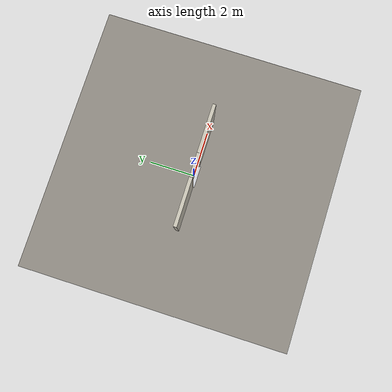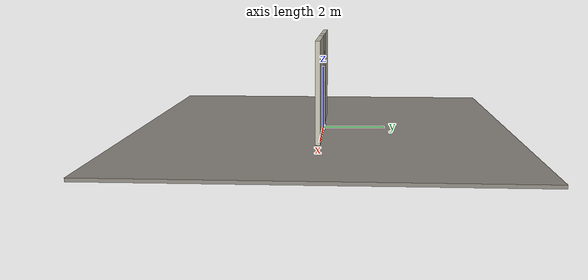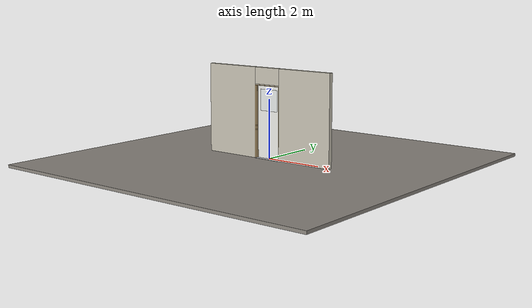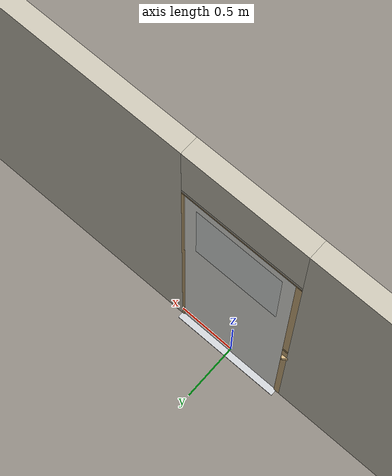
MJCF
<?xml version="1.0" ?>
<mujoco model="db0182_swing_single_minimal">
  <compiler angle="radian" meshdir="../../hardware" texturedir="../../textures" autolimits="true" inertiafromgeom="false"/>
  <option timestep="0.002" integrator="implicitfast" cone="elliptic" impratio="10" noslip_iterations="3">
    <flag multiccd="enable"/>
  </option>
  <size memory="16M"/>
  <default>
    <geom condim="4" solref="0.005 1" solimp="0.95 0.99 0.001"/>
    <joint solreflimit="0.005 1" solimplimit="0.95 0.99 0.001"/>
    <tendon solreflimit="0.005 1"/>
    <equality solref="0.002 1"/>
  </default>
  <visual>
    <headlight ambient="0.4 0.4 0.4" diffuse="0.7 0.7 0.7" specular="0.2 0.2 0.2"/>
    <quality shadowsize="4096"/>
    <map znear="0.01" zfar="60"/>
  </visual>
  <asset>
    <material name="mat_floor" rgba="0.55 0.53 0.5 1" specular="0.2" shininess="0.15" reflectance="0"/>
    <material name="mat_wall" rgba="0.78 0.76 0.7 1" specular="0.2" shininess="0.1" reflectance="0"/>
    <material name="mat_leaf" rgba="0.93 0.93 0.91 1" specular="0.2" shininess="0.47" reflectance="0"/>
    <material name="mat_glass" rgba="0.85 0.92 0.95 0.25" specular="0.2" shininess="0.95" reflectance="0.1"/>
    <material name="mat_hinge" rgba="0.65 0.66 0.68 1" specular="0.74" shininess="0.5" reflectance="0.36"/>
    <material name="mat_op_nickel_satin" rgba="0.72 0.7 0.66 1" specular="0.8" shininess="0.65" reflectance="0.4"/>
    <material name="mat_trim" rgba="0.85 0.66 0.3 1" specular="0.8" shininess="0.75" reflectance="0.4"/>
    <material name="mat_keypad" rgba="0.05 0.05 0.05 1" specular="0.38" shininess="0.3" reflectance="0.12"/>
    <material name="mat_key" rgba="0.85 0.85 0.82 1" specular="0.2" shininess="0.5" reflectance="0"/>
    <material name="mat_bolt" rgba="0.85 0.66 0.3 1" specular="0.8" shininess="0.75" reflectance="0.4"/>
    <material name="mat_deadbolt" rgba="0.85 0.66 0.3 1" specular="0.8" shininess="0.75" reflectance="0.4"/>
    <material name="mat_frame" rgba="0.82 0.7 0.5 1" specular="0.2" shininess="0.45" reflectance="0"/>
    <material name="mat_seal" rgba="0.1 0.1 0.1 1" specular="0.2" shininess="0.1" reflectance="0"/>
    <material name="mat_threshold" rgba="0.8 0.81 0.83 1" specular="0.8" shininess="0.6" reflectance="0.4"/>
    <material name="mat_kick" rgba="0.75 0.76 0.77 1" specular="0.8" shininess="0.65" reflectance="0.4"/>
    <texture name="skybox" type="skybox" builtin="gradient" rgb1="0.6 0.7 0.85" rgb2="0.9 0.92 0.95" width="256" height="256"/>
  </asset>
  <worldbody>
    <light name="sun" pos="1.5 -2.5 4" dir="-0.3 0.5 -0.8" directional="true" diffuse="0.8 0.8 0.8" specular="0.3 0.3 0.3" castshadow="true"/>
    <light name="fill" pos="-1.5 2.5 3" dir="0.3 -0.5 -0.7" directional="true" diffuse="0.35 0.35 0.4" castshadow="false"/>
    <camera name="robot_view" pos="0 -2.966312 2.043887" xyaxes="1 0 0 0 0.26963 0.962964" fovy="52"/>
    <camera name="far_view" pos="0 2.879313 2.043887" xyaxes="-1 0 0 0 -0.26963 0.962964" fovy="52"/>
    <camera name="iso" pos="-2.221337 -2.498663 2.511538" xyaxes="0.741536 -0.670913 0 0.242917 0.268487 0.932151" fovy="46"/>
    <camera name="detail_handle" pos="-0.1735 -0.8435 1.245" xyaxes="0.97561 0.219512 0 -0.070934 0.315262 0.94635" fovy="38"/>
    <geom name="floor" type="box" size="6 6 0.05" pos="0 0 -0.05" material="mat_floor" group="0" contype="1" conaffinity="1" friction="0.8 0.005 0.0001" density="2400"/>
    <geom name="wall_left" type="box" size="0.99525 0.0725 1.5255" pos="-1.50475 -0.0435 1.5255" material="mat_wall" group="0" contype="1" conaffinity="1" friction="0.6 0.005 0.0001" density="800"/>
    <geom name="wall_right" type="box" size="1.01025 0.0725 1.5255" pos="1.48975 -0.0435 1.5255" material="mat_wall" group="0" contype="1" conaffinity="1" friction="0.6 0.005 0.0001" density="800"/>
    <geom name="wall_header" type="box" size="0.4945 0.0725 0.2755" pos="-0.015 -0.0435 2.7755" material="mat_wall" group="0" contype="1" conaffinity="1" friction="0.6 0.005 0.0001" density="800"/>
    <geom name="jamb_hinge" type="box" size="0.0095 0.0725 1.2255" pos="0.47 -0.0435 1.2255" material="mat_frame" group="0" contype="1" conaffinity="1" friction="0.6 0.005 0.0001" density="400"/>
    <geom name="strike_965_wall_n" type="box" size="0.0245 0.05325 0.0183" pos="-0.485 -0.06275 0.965" material="mat_frame" group="0" contype="1" conaffinity="1" friction="0.6 0.005 0.0001" density="400"/>
    <geom name="strike_965_wall_p" type="box" size="0.0245 0.008 0.0183" pos="-0.485 0.0175 0.965" material="mat_frame" group="0" contype="1" conaffinity="1" friction="0.6 0.005 0.0001" density="400"/>
    <geom name="strike_965_ramp" type="box" size="0.0245 0.018028 0.0183" pos="-0.490885 0.02691 0.965" quat="0.957092 0 0 0.289784" material="mat_frame" group="0" contype="1" conaffinity="1" friction="0.12 0.005 0.0001" density="400"/>
    <geom name="strike_965_back" type="box" size="0.013 0.0095 0.0183" pos="-0.4965 0 0.965" material="mat_frame" group="0" contype="1" conaffinity="1" friction="0.6 0.005 0.0001" density="400"/>
    <geom name="strike_1105_wall_n" type="box" size="0.0245 0.05325 0.0155" pos="-0.485 -0.06275 1.105" material="mat_frame" group="0" contype="1" conaffinity="1" friction="0.6 0.005 0.0001" density="400"/>
    <geom name="strike_1105_wall_p" type="box" size="0.0245 0.00975 0.0155" pos="-0.485 0.01925 1.105" material="mat_frame" group="0" contype="1" conaffinity="1" friction="0.6 0.005 0.0001" density="400"/>
    <geom name="strike_1105_back" type="box" size="0.0098 0.0095 0.0155" pos="-0.4997 0 1.105" material="mat_frame" group="0" contype="1" conaffinity="1" friction="0.6 0.005 0.0001" density="400"/>
    <geom name="jamb_strike_0" type="box" size="0.0245 0.0725 0.47335" pos="-0.485 -0.0435 0.47335" material="mat_frame" group="0" contype="1" conaffinity="1" friction="0.6 0.005 0.0001" density="400"/>
    <geom name="jamb_strike_1" type="box" size="0.0245 0.0725 0.0531" pos="-0.485 -0.0435 1.0364" material="mat_frame" group="0" contype="1" conaffinity="1" friction="0.6 0.005 0.0001" density="400"/>
    <geom name="jamb_strike_2" type="box" size="0.0245 0.0725 0.66525" pos="-0.485 -0.0435 1.78575" material="mat_frame" group="0" contype="1" conaffinity="1" friction="0.6 0.005 0.0001" density="400"/>
    <geom name="jamb_head" type="box" size="0.4945 0.0725 0.0095" pos="-0.015 -0.0435 2.4605" material="mat_frame" group="0" contype="1" conaffinity="1" friction="0.6 0.005 0.0001" density="400"/>
    <geom name="head_stud" type="box" size="0.4945 0.0725 0.015" pos="-0.015 -0.0435 2.485" material="mat_wall" group="0" contype="1" conaffinity="1" friction="0.6 0.005 0.0001" density="500"/>
    <geom name="stop_hinge" type="box" size="0.0055 0.016 1.2255" pos="0.455 -0.0385 1.2255" material="mat_frame" group="0" contype="1" conaffinity="1" friction="0.6 0.005 0.0001" density="400"/>
    <geom name="stop_strike" type="box" size="0.0055 0.016 1.2255" pos="-0.455 -0.0385 1.2255" material="mat_frame" group="0" contype="1" conaffinity="1" friction="0.6 0.005 0.0001" density="400"/>
    <geom name="stop_head" type="box" size="0.4605 0.016 0.0055" pos="0 -0.0385 2.4455" material="mat_frame" group="0" contype="1" conaffinity="1" friction="0.6 0.005 0.0001" density="400"/>
    <geom name="threshold" type="box" size="0.4795 0.1225 0.004" pos="0 -0.0435 0.004" material="mat_threshold" group="0" contype="1" conaffinity="1" friction="0.6 0.005 0.0001" density="2700"/>
    <site name="approach_point" pos="0 -1.5 0" quat="1 0 0 0" size="0.05" rgba="0.2 0.9 0.2 0.5" group="4"/>
    <site name="goal_point" pos="0 1.5 0" quat="1 0 0 0" size="0.05" rgba="0.2 0.9 0.2 0.5" group="4"/>
    <site name="door_plane_center" pos="0 0 1.2255" quat="1 0 0 0" size="0.02" rgba="0.2 0.9 0.2 0.5" group="4"/>
    <body name="leaf" pos="0.4605 0 0">
      <inertial pos="-0.46 0 1.228719" mass="35.830961" quat="-0.5 -0.5 -0.5 0.5" diaginertia="2.499250016 17.756817596 20.244505322"/>
      <joint name="leaf_hinge" type="hinge" axis="0 0 -1" pos="-0.003 0.029 0" limited="true" range="0 1.919862" solreflimit="0.02 1" damping="0.357281" frictionloss="1.09799" armature="0.02"/>
      <geom name="leaf_slab" type="box" size="0.457 0.022 1.219" pos="-0.46 0 1.228" material="mat_leaf" group="0" contype="1" conaffinity="1" friction="0.4 0.005 0.0001" density="1"/>
      <geom name="leaf_glass_0" type="box" size="0.35646 0.0228 0.358386" pos="-0.46 0 1.966714" material="mat_glass" group="1" contype="0" conaffinity="0" density="1"/>
      <site name="leaf_edge_mid" pos="-0.917 0 1.219" quat="1 0 0 0" size="0.02" rgba="0.2 0.9 0.2 0.5" group="4"/>
      <body name="leaf_handle" pos="-0.847 0 0.965">
        <inertial pos="0 0 0" mass="0.01" quat="1 0 0 0" diaginertia="0.000001 0.000001 0.000001"/>
        <joint name="leaf_handle_hinge" type="hinge" axis="0 1 0" limited="true" range="0 0.87" damping="0.141426" frictionloss="0.048" stiffness="0.5" springref="-0.5" armature="0.01"/>
      </body>
      <body name="leaf_latch_bolt" pos="-0.917 0 0.965">
        <inertial pos="0.0055 0 0" mass="0.074627" quat="0.92388 0.382683 0 0" diaginertia="0.000002271 0.000013255 0.000013255"/>
        <joint name="leaf_latch_bolt_slide" type="slide" axis="1 0 0" limited="true" range="0 0.019" damping="2" frictionloss="0.3" stiffness="600" springref="-0.01" armature="0.1"/>
        <geom name="leaf_latch_bolt_capsule" type="capsule" size="0.008 0.0165" pos="0.0055 0 0" quat="0.707107 0 -0.707107 0" material="mat_bolt" group="0" contype="1" conaffinity="1" friction="0.2 0.005 0.0001" density="8500"/>
      </body>
    </body>
  </worldbody>
  <tendon>
    <fixed name="leaf_latch_bolt_coupling" limited="true" range="0 10">
      <joint joint="leaf_latch_bolt_slide" coef="1"/>
      <joint joint="leaf_handle_hinge" coef="-0.023457"/>
    </fixed>
  </tendon>
  <sensor>
    <jointpos name="leaf_hinge_pos" joint="leaf_hinge"/>
    <jointvel name="leaf_hinge_vel" joint="leaf_hinge"/>
    <jointpos name="leaf_handle_hinge_pos" joint="leaf_handle_hinge"/>
    <jointvel name="leaf_handle_hinge_vel" joint="leaf_handle_hinge"/>
    <jointpos name="leaf_latch_bolt_slide_pos" joint="leaf_latch_bolt_slide"/>
    <jointvel name="leaf_latch_bolt_slide_vel" joint="leaf_latch_bolt_slide"/>
  </sensor>
</mujoco>
